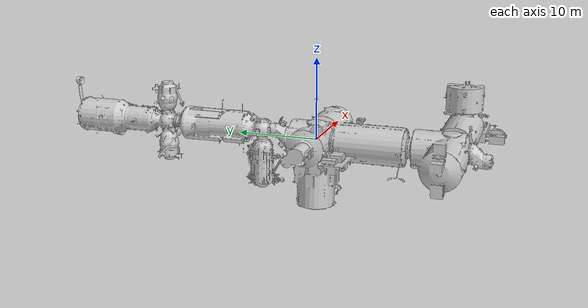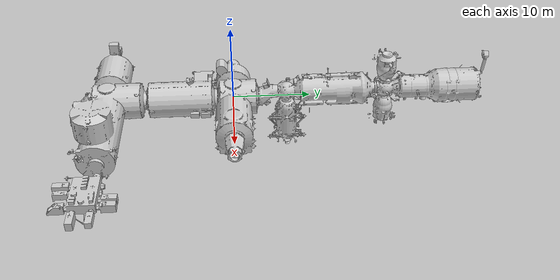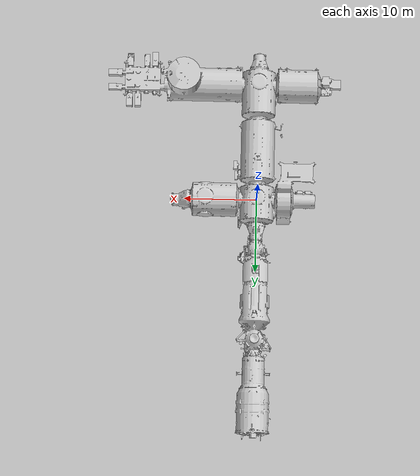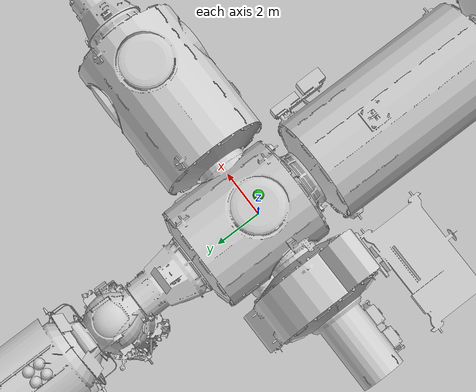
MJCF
<mujoco model="iss_env">
  <compiler meshdir="." discardvisual="false"/>
  <option timestep="0.002" gravity="0 0 0"/>

  <asset>
    <mesh name="iss" file="ISS_Stationary_Bare.stl" scale="1 1 1"/>
  </asset>

  <worldbody>
    <body name="station" pos="0 0 0">
      <!-- visual-only: no contacts -->
      <geom type="mesh" mesh="iss" contype="0" conaffinity="0" rgba="0.8 0.8 0.8 1"/>
    </body>

    <!-- toy probe so you see something moving -->
    <body name="probe" pos="0 0 5">
      <freejoint/>
      <geom type="sphere" size="0.2" rgba="0.1 0.7 0.1 1"/>
    </body>
  </worldbody>
</mujoco>
